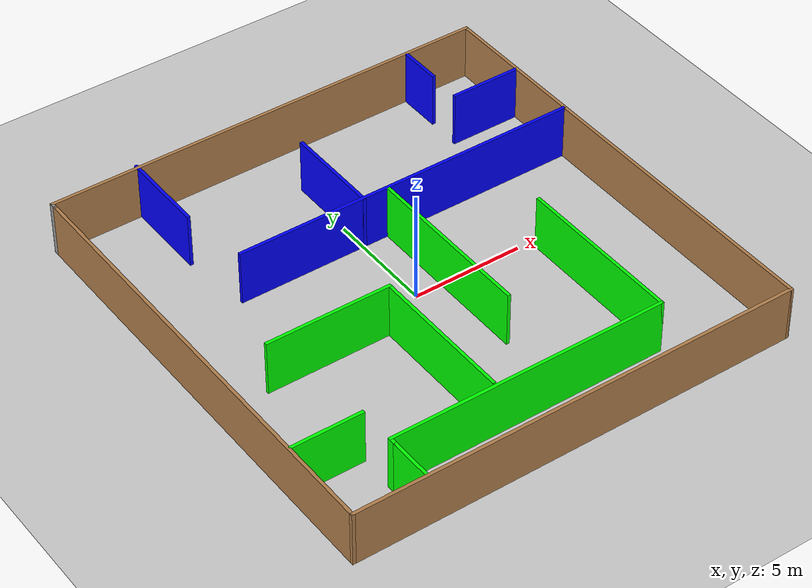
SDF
<sdf version="1.6">
 <world name="myworld">
  <light name="sun" type="directional">
   <pose>0 0 10 0 -0 0</pose>
   <diffuse>0.8 0.8 0.8 1</diffuse>
   <specular>0.2 0.2 0.2 1</specular>
   <attenuation>
    <range>1000</range>
    <constant>0.9</constant>
    <linear>0.01</linear>
    <quadratic>0.001</quadratic>
   </attenuation>
   <direction>-0.5 0.1 -0.9</direction>
  </light>
  <model name="ground_plane">
   <static>1</static>
   <link name="link">
    <collision name="collision">
     <geometry><plane><normal>0 0 1</normal><size>100 100</size></plane></geometry>
     <surface>
      <contact><collide_bitmask>65535</collide_bitmask></contact>
      <friction><ode><mu>100</mu><mu2>50</mu2></ode></friction>
     </surface>
    </collision>
    <visual name="visual">
     <cast_shadows>0</cast_shadows>
     <geometry><plane><normal>0 0 1</normal><size>100 100</size></plane></geometry>
     <material>
      <script><uri>file://media/materials/scripts/gazebo.material</uri><name>Gazebo/Grey</name></script>
     </material>
    </visual>
   </link>
  </model>
  <gravity>0 0 -9.8</gravity>
  <magnetic_field>6e-06 2.3e-05 -4.2e-05</magnetic_field>
  <atmosphere type="adiabatic"/>
  <physics name="default_physics" default="0" type="ode">
   <max_step_size>0.001</max_step_size>
   <real_time_factor>1</real_time_factor>
   <real_time_update_rate>1000</real_time_update_rate>
  </physics>
  <scene><ambient>0.4 0.4 0.4 1</ambient><background>0.7 0.7 0.7 1</background><shadows>1</shadows></scene>
  <spherical_coordinates>
   <surface_model>EARTH_WGS84</surface_model>
   <latitude_deg>0</latitude_deg>
   <longitude_deg>0</longitude_deg>
   <elevation>0</elevation>
   <heading_deg>0</heading_deg>
  </spherical_coordinates>
  <model name="model">
   <pose>0.036158 0.1996 0 0 -0 0</pose>
   <link name="Wall_12">
    <collision name="Wall_12_Collision">
     <geometry><box><size>20.5 0.15 2.5</size></box></geometry>
     <pose>0 0 1.25 0 -0 0</pose>
    </collision>
    <visual name="Wall_12_Visual">
     <pose>0 0 1.25 0 -0 0</pose>
     <geometry><box><size>20.5 0.15 2.5</size></box></geometry>
     <material>
      <script><uri>file://media/materials/scripts/gazebo.material</uri><name>Gazebo/Wood</name></script>
      <ambient>1 1 1 1</ambient>
     </material>
     <meta><layer>0</layer></meta>
    </visual>
    <pose>0 10.3729 0 0 -0 0</pose>
   </link>
   <link name="Wall_13">
    <collision name="Wall_13_Collision">
     <geometry><box><size>21 0.15 2.5</size></box></geometry>
     <pose>0 0 1.25 0 -0 0</pose>
    </collision>
    <visual name="Wall_13_Visual">
     <pose>0 0 1.25 0 -0 0</pose>
     <geometry><box><size>21 0.15 2.5</size></box></geometry>
     <material>
      <script><uri>file://media/materials/scripts/gazebo.material</uri><name>Gazebo/Wood</name></script>
      <ambient>1 1 1 1</ambient>
     </material>
     <meta><layer>0</layer></meta>
    </visual>
    <pose>10.175 -0.05213 0 0 -0 -1.5708</pose>
   </link>
   <link name="Wall_14">
    <collision name="Wall_14_Collision">
     <geometry><box><size>20.5 0.15 2.5</size></box></geometry>
     <pose>0 0 1.25 0 -0 0</pose>
    </collision>
    <visual name="Wall_14_Visual">
     <pose>0 0 1.25 0 -0 0</pose>
     <geometry><box><size>20.5 0.15 2.5</size></box></geometry>
     <material>
      <script><uri>file://media/materials/scripts/gazebo.material</uri><name>Gazebo/Wood</name></script>
      <ambient>1 1 1 1</ambient>
     </material>
     <meta><layer>0</layer></meta>
    </visual>
    <pose>0 -10.4771 0 0 -0 3.14159</pose>
   </link>
   <link name="Wall_15">
    <collision name="Wall_15_Collision">
     <geometry><box><size>20.75 0.15 2.5</size></box></geometry>
     <pose>0 0 1.25 0 -0 0</pose>
    </collision>
    <visual name="Wall_15_Visual">
     <pose>0 0 1.25 0 -0 0</pose>
     <geometry><box><size>20.75 0.15 2.5</size></box></geometry>
     <material>
      <script><uri>file://media/materials/scripts/gazebo.material</uri><name>Gazebo/Wood</name></script>
      <ambient>1 1 1 1</ambient>
     </material>
     <meta><layer>0</layer></meta>
    </visual>
    <pose>-10.175 -0.17713 0 0 -0 1.5708</pose>
   </link>
   <link name="Wall_16">
    <collision name="Wall_16_Collision">
     <geometry><box><size>0.4 0.15 2.5</size></box></geometry>
     <pose>0 0 1.25 0 -0 0</pose>
    </collision>
    <visual name="Wall_16_Visual">
     <pose>0 0 1.25 0 -0 0</pose>
     <geometry><box><size>0.4 0.15 2.5</size></box></geometry>
     <material>
      <script><uri>file://media/materials/scripts/gazebo.material</uri><name>Gazebo/Grey</name></script>
      <ambient>1 1 1 1</ambient>
     </material>
     <meta><layer>0</layer></meta>
    </visual>
    <pose>-10.175 10.2479 0 0 -0 1.5708</pose>
   </link>
   <link name="Wall_18">
    <collision name="Wall_18_Collision">
     <geometry><box><size>2 0.15 2.5</size></box></geometry>
     <pose>0 0 1.25 0 -0 0</pose>
    </collision>
    <visual name="Wall_18_Visual">
     <pose>0 0 1.25 0 -0 0</pose>
     <geometry><box><size>2 0.15 2.5</size></box></geometry>
     <material>
      <script><uri>file://media/materials/scripts/gazebo.material</uri><name>Gazebo/Grey</name></script>
      <ambient>0 0 1 1</ambient>
     </material>
     <meta><layer>0</layer></meta>
    </visual>
    <pose>7.01333 9.34312 0 0 -0 -1.5708</pose>
   </link>
   <link name="Wall_20">
    <collision name="Wall_20_Collision">
     <geometry><box><size>3.25 0.15 2.5</size></box></geometry>
     <pose>0 0 1.25 0 -0 0</pose>
    </collision>
    <visual name="Wall_20_Visual">
     <pose>0 0 1.25 0 -0 0</pose>
     <geometry><box><size>3.25 0.15 2.5</size></box></geometry>
     <material>
      <script><uri>file://media/materials/scripts/gazebo.material</uri><name>Gazebo/Grey</name></script>
      <ambient>0 0 1 1</ambient>
     </material>
     <meta><layer>0</layer></meta>
    </visual>
    <pose>8.52905 6.79063 0 0 -0 3.14159</pose>
   </link>
   <link name="Wall_22">
    <collision name="Wall_22_Collision">
     <geometry><box><size>2 0.15 2.5</size></box></geometry>
     <pose>0 0 1.25 0 -0 0</pose>
    </collision>
    <visual name="Wall_22_Visual">
     <pose>0 0 1.25 0 -0 0</pose>
     <geometry><box><size>2 0.15 2.5</size></box></geometry>
     <material>
      <script><uri>file://media/materials/scripts/gazebo.material</uri><name>Gazebo/Grey</name></script>
      <ambient>0 1 0 1</ambient>
     </material>
     <meta><layer>0</layer></meta>
    </visual>
    <pose>-6.92891 -9.46506 0 0 -0 1.5708</pose>
   </link>
   <link name="Wall_24">
    <collision name="Wall_24_Collision">
     <geometry><box><size>3.25 0.15 2.5</size></box></geometry>
     <pose>0 0 1.25 0 -0 0</pose>
    </collision>
    <visual name="Wall_24_Visual">
     <pose>0 0 1.25 0 -0 0</pose>
     <geometry><box><size>3.25 0.15 2.5</size></box></geometry>
     <material>
      <script><uri>file://media/materials/scripts/gazebo.material</uri><name>Gazebo/Grey</name></script>
      <ambient>0 1 0 1</ambient>
     </material>
     <meta><layer>0</layer></meta>
    </visual>
    <pose>-8.52448 -6.48316 0 0 -0 0</pose>
   </link>
   <link name="Wall_26">
    <collision name="Wall_26_Collision">
     <geometry><box><size>16 0.15 2.5</size></box></geometry>
     <pose>0 0 1.25 0 -0 0</pose>
    </collision>
    <visual name="Wall_26_Visual">
     <pose>0 0 1.25 0 -0 0</pose>
     <geometry><box><size>16 0.15 2.5</size></box></geometry>
     <material>
      <script><uri>file://media/materials/scripts/gazebo.material</uri><name>Gazebo/Grey</name></script>
      <ambient>0 0 1 1</ambient>
     </material>
     <meta><layer>0</layer></meta>
    </visual>
    <pose>2.17096 3.52181 0 0 -0 3.14159</pose>
   </link>
   <link name="Wall_29">
    <collision name="Wall_29_Collision">
     <geometry><box><size>4.5 0.15 2.5</size></box></geometry>
     <pose>0 0 1.25 0 -0 0</pose>
    </collision>
    <visual name="Wall_29_Visual">
     <pose>0 0 1.25 0 -0 0</pose>
     <geometry><box><size>4.5 0.15 2.5</size></box></geometry>
     <material>
      <script><uri>file://media/materials/scripts/gazebo.material</uri><name>Gazebo/Grey</name></script>
      <ambient>0 0 1 1</ambient>
     </material>
     <meta><layer>0</layer></meta>
    </visual>
    <pose>0.037489 5.68051 0 0 -0 -1.5708</pose>
   </link>
   <link name="Wall_31">
    <collision name="Wall_31_Collision">
     <geometry><box><size>4 0.15 2.5</size></box></geometry>
     <pose>0 0 1.25 0 -0 0</pose>
    </collision>
    <visual name="Wall_31_Visual">
     <pose>0 0 1.25 0 -0 0</pose>
     <geometry><box><size>4 0.15 2.5</size></box></geometry>
     <material>
      <script><uri>file://media/materials/scripts/gazebo.material</uri><name>Gazebo/Grey</name></script>
      <ambient>0 0 1 1</ambient>
     </material>
     <meta><layer>0</layer></meta>
    </visual>
    <pose>-6.2223 8.55213 0 0 -0 -1.5708</pose>
   </link>
   <link name="Wall_33">
    <collision name="Wall_33_Collision">
     <geometry><box><size>0.5 0.15 2.5</size></box></geometry>
     <pose>0 0 1.25 0 -0 0</pose>
    </collision>
    <visual name="Wall_33_Visual">
     <pose>0 0 1.25 0 -0 0</pose>
     <geometry><box><size>0.5 0.15 2.5</size></box></geometry>
     <material>
      <script><uri>file://media/materials/scripts/gazebo.material</uri><name>Gazebo/Grey</name></script>
      <ambient>0 1 0 1</ambient>
     </material>
     <meta><layer>0</layer></meta>
    </visual>
    <pose>-6.92891 -8.36506 0 0 -0 1.5708</pose>
   </link>
   <link name="Wall_34">
    <collision name="Wall_34_Collision">
     <geometry><box><size>12.75 0.15 2.5</size></box></geometry>
     <pose>0 0 1.25 0 -0 0</pose>
    </collision>
    <visual name="Wall_34_Visual">
     <pose>0 0 1.25 0 -0 0</pose>
     <geometry><box><size>12.75 0.15 2.5</size></box></geometry>
     <material>
      <script><uri>file://media/materials/scripts/gazebo.material</uri><name>Gazebo/Grey</name></script>
      <ambient>0 1 0 1</ambient>
     </material>
     <meta><layer>0</layer></meta>
    </visual>
    <pose>-0.628907 -8.19006 0 0 -0 0</pose>
   </link>
   <link name="Wall_35">
    <collision name="Wall_35_Collision">
     <geometry><box><size>7.75 0.15 2.5</size></box></geometry>
     <pose>0 0 1.25 0 -0 0</pose>
    </collision>
    <visual name="Wall_35_Visual">
     <pose>0 0 1.25 0 -0 0</pose>
     <geometry><box><size>7.75 0.15 2.5</size></box></geometry>
     <material>
      <script><uri>file://media/materials/scripts/gazebo.material</uri><name>Gazebo/Grey</name></script>
      <ambient>0 1 0 1</ambient>
     </material>
     <meta><layer>0</layer></meta>
    </visual>
    <pose>5.67109 -4.39006 0 0 -0 1.5708</pose>
   </link>
   <link name="Wall_37">
    <collision name="Wall_37_Collision">
     <geometry><box><size>6.75 0.15 2.5</size></box></geometry>
     <pose>0 0 1.25 0 -0 0</pose>
    </collision>
    <visual name="Wall_37_Visual">
     <pose>0 0 1.25 0 -0 0</pose>
     <geometry><box><size>6.75 0.15 2.5</size></box></geometry>
     <material>
      <script><uri>file://media/materials/scripts/gazebo.material</uri><name>Gazebo/Grey</name></script>
      <ambient>0 1 0 1</ambient>
     </material>
     <meta><layer>0</layer></meta>
    </visual>
    <pose>-2.15611 -4.68123 0 0 -0 1.5708</pose>
   </link>
   <link name="Wall_38">
    <collision name="Wall_38_Collision">
     <geometry><box><size>5.75 0.15 2.5</size></box></geometry>
     <pose>0 0 1.25 0 -0 0</pose>
    </collision>
    <visual name="Wall_38_Visual">
     <pose>0 0 1.25 0 -0 0</pose>
     <geometry><box><size>5.75 0.15 2.5</size></box></geometry>
     <material>
      <script><uri>file://media/materials/scripts/gazebo.material</uri><name>Gazebo/Grey</name></script>
      <ambient>0 1 0 1</ambient>
     </material>
     <meta><layer>0</layer></meta>
    </visual>
    <pose>-4.95611 -1.38123 0 0 -0 3.14159</pose>
   </link>
   <link name="Wall_42">
    <collision name="Wall_42_Collision">
     <geometry><box><size>8 0.15 2.5</size></box></geometry>
     <pose>0 0 1.25 0 -0 0</pose>
    </collision>
    <visual name="Wall_42_Visual">
     <pose>0 0 1.25 0 -0 0</pose>
     <geometry><box><size>8 0.15 2.5</size></box></geometry>
     <material>
      <script><uri>file://media/materials/scripts/gazebo.material</uri><name>Gazebo/Grey</name></script>
      <ambient>0 1 0 1</ambient>
     </material>
     <meta><layer>0</layer></meta>
    </visual>
    <pose>1.21454 -0.510201 0 0 -0 -1.5708</pose>
   </link>
   <static>1</static>
  </model>
  <light name="user_spot_light_0" type="spot">
   <pose>-3.58809 -10.0109 3 0 -0 0</pose>
   <diffuse>0.5 0.5 0.5 1</diffuse>
   <specular>0.1 0.1 0.1 1</specular>
   <direction>0 0 -1</direction>
   <attenuation>
    <range>20</range>
    <constant>0</constant>
    <linear>0</linear>
    <quadratic>0.001</quadratic>
   </attenuation>
   <cast_shadows>0</cast_shadows>
   <spot><inner_angle>0.6</inner_angle><outer_angle>1</outer_angle><falloff>1</falloff></spot>
  </light>
  <light name="user_spot_light_1" type="spot">
   <pose>9.90406 -5.62643 3 0 -0 0</pose>
   <diffuse>0.5 0.5 0.5 1</diffuse>
   <specular>0.1 0.1 0.1 1</specular>
   <direction>0 0 -1</direction>
   <attenuation>
    <range>20</range>
    <constant>0</constant>
    <linear>0</linear>
    <quadratic>0.001</quadratic>
   </attenuation>
   <cast_shadows>0</cast_shadows>
   <spot><inner_angle>0.6</inner_angle><outer_angle>1</outer_angle><falloff>1</falloff></spot>
  </light>
  <light name="user_spot_light_2" type="spot">
   <pose>5.91424 3.31514 3 0 -0 0</pose>
   <diffuse>0.5 0.5 0.5 1</diffuse>
   <specular>0.1 0.1 0.1 1</specular>
   <direction>0 0 -1</direction>
   <attenuation>
    <range>20</range>
    <constant>0</constant>
    <linear>0</linear>
    <quadratic>0.001</quadratic>
   </attenuation>
   <cast_shadows>0</cast_shadows>
   <spot><inner_angle>0.6</inner_angle><outer_angle>1</outer_angle><falloff>1</falloff></spot>
  </light>
  <light name="user_spot_light_3" type="spot">
   <pose>-0.487058 -7.74995 3 0 -0 0</pose>
   <diffuse>0.5 0.5 0.5 1</diffuse>
   <specular>0.1 0.1 0.1 1</specular>
   <direction>0 0 -1</direction>
   <attenuation>
    <range>20</range>
    <constant>0</constant>
    <linear>0</linear>
    <quadratic>0.001</quadratic>
   </attenuation>
   <cast_shadows>0</cast_shadows>
   <spot><inner_angle>0.6</inner_angle><outer_angle>1</outer_angle><falloff>1</falloff></spot>
  </light>
  <light name="user_spot_light_4" type="spot">
   <pose>-2.46276 -1.51599 3 0 -0 0</pose>
   <diffuse>0.5 0.5 0.5 1</diffuse>
   <specular>0.1 0.1 0.1 1</specular>
   <direction>0 0 -1</direction>
   <attenuation>
    <range>20</range>
    <constant>0</constant>
    <linear>0</linear>
    <quadratic>0.001</quadratic>
   </attenuation>
   <cast_shadows>0</cast_shadows>
   <spot><inner_angle>0.6</inner_angle><outer_angle>1</outer_angle><falloff>1</falloff></spot>
  </light>
  <light name="user_spot_light_5" type="spot">
   <pose>-5.86403 3.75612 3 0 -0 0</pose>
   <diffuse>0.5 0.5 0.5 1</diffuse>
   <specular>0.1 0.1 0.1 1</specular>
   <direction>0 0 -1</direction>
   <attenuation>
    <range>20</range>
    <constant>0</constant>
    <linear>0</linear>
    <quadratic>0.001</quadratic>
   </attenuation>
   <cast_shadows>0</cast_shadows>
   <spot><inner_angle>0.6</inner_angle><outer_angle>1</outer_angle><falloff>1</falloff></spot>
  </light>
  <light name="user_spot_light_6" type="spot">
   <pose>-9.85793 10.2356 3 0 -0 0</pose>
   <diffuse>0.5 0.5 0.5 1</diffuse>
   <specular>0.1 0.1 0.1 1</specular>
   <direction>0 0 -1</direction>
   <attenuation>
    <range>20</range>
    <constant>0</constant>
    <linear>0</linear>
    <quadratic>0.001</quadratic>
   </attenuation>
   <cast_shadows>0</cast_shadows>
   <spot><inner_angle>0.6</inner_angle><outer_angle>1</outer_angle><falloff>1</falloff></spot>
  </light>
  <light name="user_spot_light_7" type="spot">
   <pose>-4.02415 10.3557 3 0 -0 0</pose>
   <diffuse>0.5 0.5 0.5 1</diffuse>
   <specular>0.1 0.1 0.1 1</specular>
   <direction>0 0 -1</direction>
   <attenuation>
    <range>20</range>
    <constant>0</constant>
    <linear>0</linear>
    <quadratic>0.001</quadratic>
   </attenuation>
   <cast_shadows>0</cast_shadows>
   <spot><inner_angle>0.6</inner_angle><outer_angle>1</outer_angle><falloff>1</falloff></spot>
  </light>
  <light name="user_spot_light_8" type="spot">
   <pose>8.74027 4.07364 3 0 -0 0</pose>
   <diffuse>0.5 0.5 0.5 1</diffuse>
   <specular>0.1 0.1 0.1 1</specular>
   <direction>0 0 -1</direction>
   <attenuation>
    <range>20</range>
    <constant>0</constant>
    <linear>0</linear>
    <quadratic>0.001</quadratic>
   </attenuation>
   <cast_shadows>0</cast_shadows>
   <spot><inner_angle>0.6</inner_angle><outer_angle>1</outer_angle><falloff>1</falloff></spot>
  </light>
 </world>
</sdf>
